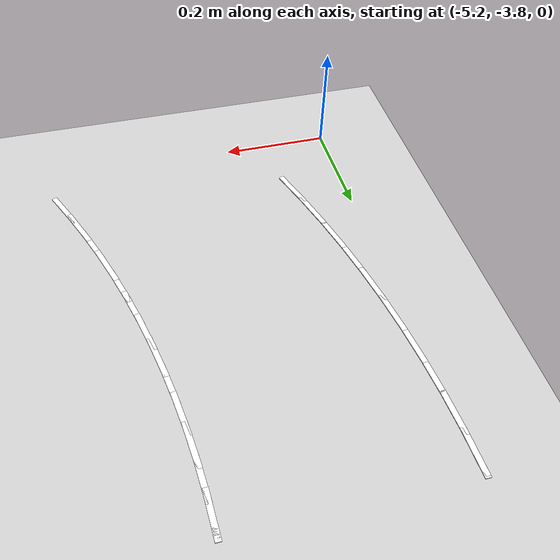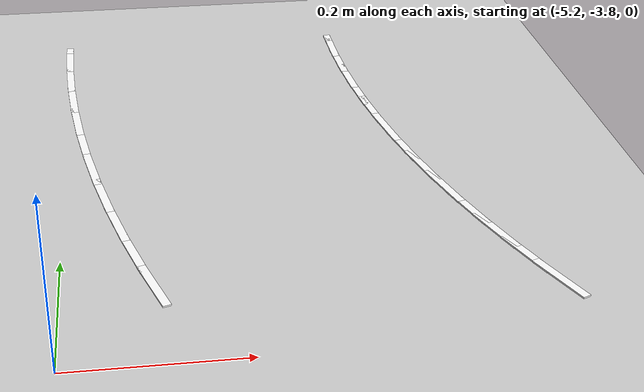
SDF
<sdf version="1.7">
 <world name="default">
  <model name="ground_plane">
   <static>1</static>
   <link name="link">
    <collision name="collision">
     <geometry><plane><normal>0 0 1</normal><size>100 100</size></plane></geometry>
     <surface>
      <contact><collide_bitmask>65535</collide_bitmask></contact>
      <friction><ode><mu>100</mu><mu2>50</mu2></ode></friction>
     </surface>
    </collision>
    <visual name="visual">
     <cast_shadows>0</cast_shadows>
     <geometry><plane><normal>0 0 1</normal><size>100 100</size></plane></geometry>
     <material>
      <script><uri>file://media/materials/scripts/gazebo.material</uri><name>Gazebo/Grey</name></script>
     </material>
    </visual>
   </link>
  </model>
  <model name="lane_line_left_349">
   <static>1</static>
   <link name="link">
    <pose>0 0 -0.004 0 -0 0</pose>
    <visual name="visual">
     <geometry><box><size>0.02 0.01 0.01</size></box></geometry>
     <material><ambient>1 1 1 1</ambient><diffuse>1 1 1 1</diffuse></material>
    </visual>
    <collision name="collision"><geometry><box><size>0.02 0.01 0.01</size></box></geometry></collision>
   </link>
   <pose>-5.2 -3 0 0 -0 1.5708</pose>
  </model>
  <model name="lane_line_right_349">
   <static>1</static>
   <link name="link">
    <pose>0 0 -0.004 0 -0 0</pose>
    <visual name="visual">
     <geometry><box><size>0.02 0.01 0.01</size></box></geometry>
     <material><ambient>1 1 1 1</ambient><diffuse>1 1 1 1</diffuse></material>
    </visual>
    <collision name="collision"><geometry><box><size>0.02 0.01 0.01</size></box></geometry></collision>
   </link>
   <pose>-4.8 -3 0 0 -0 1.5708</pose>
  </model>
  <model name="lane_line_left_350">
   <static>1</static>
   <link name="link">
    <pose>0 0 -0.004 0 -0 0</pose>
    <visual name="visual">
     <geometry><box><size>0.0841 0.01 0.01</size></box></geometry>
     <material><ambient>1 1 1 1</ambient><diffuse>1 1 1 1</diffuse></material>
    </visual>
    <collision name="collision"><geometry><box><size>0.0841 0.01 0.01</size></box></geometry></collision>
   </link>
   <pose>-4.79951 -3.02885 0 0 0 -1.55477</pose>
  </model>
  <model name="lane_line_right_350">
   <static>1</static>
   <link name="link">
    <pose>0 0 -0.004 0 -0 0</pose>
    <visual name="visual">
     <geometry><box><size>0.0841 0.01 0.01</size></box></geometry>
     <material><ambient>1 1 1 1</ambient><diffuse>1 1 1 1</diffuse></material>
    </visual>
    <collision name="collision"><geometry><box><size>0.0841 0.01 0.01</size></box></geometry></collision>
   </link>
   <pose>-5.19946 -3.03526 0 0 0 -1.55477</pose>
  </model>
  <model name="lane_line_left_351">
   <static>1</static>
   <link name="link">
    <pose>0 0 -0.004 0 -0 0</pose>
    <visual name="visual">
     <geometry><box><size>0.0841 0.01 0.01</size></box></geometry>
     <material><ambient>1 1 1 1</ambient><diffuse>1 1 1 1</diffuse></material>
    </visual>
    <collision name="collision"><geometry><box><size>0.0841 0.01 0.01</size></box></geometry></collision>
   </link>
   <pose>-4.79766 -3.08651 0 0 0 -1.52271</pose>
  </model>
  <model name="lane_line_right_351">
   <static>1</static>
   <link name="link">
    <pose>0 0 -0.004 0 -0 0</pose>
    <visual name="visual">
     <geometry><box><size>0.0841 0.01 0.01</size></box></geometry>
     <material><ambient>1 1 1 1</ambient><diffuse>1 1 1 1</diffuse></material>
    </visual>
    <collision name="collision"><geometry><box><size>0.0841 0.01 0.01</size></box></geometry></collision>
   </link>
   <pose>-5.1972 -3.10574 0 0 0 -1.52271</pose>
  </model>
  <model name="lane_line_left_352">
   <static>1</static>
   <link name="link">
    <pose>0 0 -0.004 0 -0 0</pose>
    <visual name="visual">
     <geometry><box><size>0.0841 0.01 0.01</size></box></geometry>
     <material><ambient>1 1 1 1</ambient><diffuse>1 1 1 1</diffuse></material>
    </visual>
    <collision name="collision"><geometry><box><size>0.0841 0.01 0.01</size></box></geometry></collision>
   </link>
   <pose>-4.79397 -3.14408 0 0 0 -1.49065</pose>
  </model>
  <model name="lane_line_right_352">
   <static>1</static>
   <link name="link">
    <pose>0 0 -0.004 0 -0 0</pose>
    <visual name="visual">
     <geometry><box><size>0.0841 0.01 0.01</size></box></geometry>
     <material><ambient>1 1 1 1</ambient><diffuse>1 1 1 1</diffuse></material>
    </visual>
    <collision name="collision"><geometry><box><size>0.0841 0.01 0.01</size></box></geometry></collision>
   </link>
   <pose>-5.19268 -3.1761 0 0 0 -1.49065</pose>
  </model>
  <model name="lane_line_left_353">
   <static>1</static>
   <link name="link">
    <pose>0 0 -0.004 0 -0 0</pose>
    <visual name="visual">
     <geometry><box><size>0.0841 0.01 0.01</size></box></geometry>
     <material><ambient>1 1 1 1</ambient><diffuse>1 1 1 1</diffuse></material>
    </visual>
    <collision name="collision"><geometry><box><size>0.0841 0.01 0.01</size></box></geometry></collision>
   </link>
   <pose>-4.78843 -3.20151 0 0 0 -1.4586</pose>
  </model>
  <model name="lane_line_right_353">
   <static>1</static>
   <link name="link">
    <pose>0 0 -0.004 0 -0 0</pose>
    <visual name="visual">
     <geometry><box><size>0.0841 0.01 0.01</size></box></geometry>
     <material><ambient>1 1 1 1</ambient><diffuse>1 1 1 1</diffuse></material>
    </visual>
    <collision name="collision"><geometry><box><size>0.0841 0.01 0.01</size></box></geometry></collision>
   </link>
   <pose>-5.18591 -3.24629 0 0 0 -1.4586</pose>
  </model>
  <model name="lane_line_left_354">
   <static>1</static>
   <link name="link">
    <pose>0 0 -0.004 0 -0 0</pose>
    <visual name="visual">
     <geometry><box><size>0.0841 0.01 0.01</size></box></geometry>
     <material><ambient>1 1 1 1</ambient><diffuse>1 1 1 1</diffuse></material>
    </visual>
    <collision name="collision"><geometry><box><size>0.0841 0.01 0.01</size></box></geometry></collision>
   </link>
   <pose>-4.78105 -3.25873 0 0 0 -1.42654</pose>
  </model>
  <model name="lane_line_right_354">
   <static>1</static>
   <link name="link">
    <pose>0 0 -0.004 0 -0 0</pose>
    <visual name="visual">
     <geometry><box><size>0.0841 0.01 0.01</size></box></geometry>
     <material><ambient>1 1 1 1</ambient><diffuse>1 1 1 1</diffuse></material>
    </visual>
    <collision name="collision"><geometry><box><size>0.0841 0.01 0.01</size></box></geometry></collision>
   </link>
   <pose>-5.17689 -3.31623 0 0 0 -1.42654</pose>
  </model>
  <model name="lane_line_left_355">
   <static>1</static>
   <link name="link">
    <pose>0 0 -0.004 0 -0 0</pose>
    <visual name="visual">
     <geometry><box><size>0.0841 0.01 0.01</size></box></geometry>
     <material><ambient>1 1 1 1</ambient><diffuse>1 1 1 1</diffuse></material>
    </visual>
    <collision name="collision"><geometry><box><size>0.0841 0.01 0.01</size></box></geometry></collision>
   </link>
   <pose>-4.77184 -3.31568 0 0 0 -1.39448</pose>
  </model>
  <model name="lane_line_right_355">
   <static>1</static>
   <link name="link">
    <pose>0 0 -0.004 0 -0 0</pose>
    <visual name="visual">
     <geometry><box><size>0.0841 0.01 0.01</size></box></geometry>
     <material><ambient>1 1 1 1</ambient><diffuse>1 1 1 1</diffuse></material>
    </visual>
    <collision name="collision"><geometry><box><size>0.0841 0.01 0.01</size></box></geometry></collision>
   </link>
   <pose>-5.16564 -3.38584 0 0 0 -1.39448</pose>
  </model>
  <model name="lane_line_left_356">
   <static>1</static>
   <link name="link">
    <pose>0 0 -0.004 0 -0 0</pose>
    <visual name="visual">
     <geometry><box><size>0.0841 0.01 0.01</size></box></geometry>
     <material><ambient>1 1 1 1</ambient><diffuse>1 1 1 1</diffuse></material>
    </visual>
    <collision name="collision"><geometry><box><size>0.0841 0.01 0.01</size></box></geometry></collision>
   </link>
   <pose>-4.76081 -3.37231 0 0 0 -1.36243</pose>
  </model>
  <model name="lane_line_right_356">
   <static>1</static>
   <link name="link">
    <pose>0 0 -0.004 0 -0 0</pose>
    <visual name="visual">
     <geometry><box><size>0.0841 0.01 0.01</size></box></geometry>
     <material><ambient>1 1 1 1</ambient><diffuse>1 1 1 1</diffuse></material>
    </visual>
    <collision name="collision"><geometry><box><size>0.0841 0.01 0.01</size></box></geometry></collision>
   </link>
   <pose>-5.15216 -3.45505 0 0 0 -1.36243</pose>
  </model>
  <model name="lane_line_left_357">
   <static>1</static>
   <link name="link">
    <pose>0 0 -0.004 0 -0 0</pose>
    <visual name="visual">
     <geometry><box><size>0.0841 0.01 0.01</size></box></geometry>
     <material><ambient>1 1 1 1</ambient><diffuse>1 1 1 1</diffuse></material>
    </visual>
    <collision name="collision"><geometry><box><size>0.0841 0.01 0.01</size></box></geometry></collision>
   </link>
   <pose>-4.74798 -3.42855 0 0 0 -1.33037</pose>
  </model>
  <model name="lane_line_right_357">
   <static>1</static>
   <link name="link">
    <pose>0 0 -0.004 0 -0 0</pose>
    <visual name="visual">
     <geometry><box><size>0.0841 0.01 0.01</size></box></geometry>
     <material><ambient>1 1 1 1</ambient><diffuse>1 1 1 1</diffuse></material>
    </visual>
    <collision name="collision"><geometry><box><size>0.0841 0.01 0.01</size></box></geometry></collision>
   </link>
   <pose>-5.13647 -3.5238 0 0 0 -1.33037</pose>
  </model>
  <model name="lane_line_left_358">
   <static>1</static>
   <link name="link">
    <pose>0 0 -0.004 0 -0 0</pose>
    <visual name="visual">
     <geometry><box><size>0.0841 0.01 0.01</size></box></geometry>
     <material><ambient>1 1 1 1</ambient><diffuse>1 1 1 1</diffuse></material>
    </visual>
    <collision name="collision"><geometry><box><size>0.0841 0.01 0.01</size></box></geometry></collision>
   </link>
   <pose>-4.73334 -3.48436 0 0 0 -1.29831</pose>
  </model>
  <model name="lane_line_right_358">
   <static>1</static>
   <link name="link">
    <pose>0 0 -0.004 0 -0 0</pose>
    <visual name="visual">
     <geometry><box><size>0.0841 0.01 0.01</size></box></geometry>
     <material><ambient>1 1 1 1</ambient><diffuse>1 1 1 1</diffuse></material>
    </visual>
    <collision name="collision"><geometry><box><size>0.0841 0.01 0.01</size></box></geometry></collision>
   </link>
   <pose>-5.11858 -3.59201 0 0 0 -1.29831</pose>
  </model>
  <model name="lane_line_left_359">
   <static>1</static>
   <link name="link">
    <pose>0 0 -0.004 0 -0 0</pose>
    <visual name="visual">
     <geometry><box><size>0.0841 0.01 0.01</size></box></geometry>
     <material><ambient>1 1 1 1</ambient><diffuse>1 1 1 1</diffuse></material>
    </visual>
    <collision name="collision"><geometry><box><size>0.0841 0.01 0.01</size></box></geometry></collision>
   </link>
   <pose>-4.71693 -3.53966 0 0 0 -1.26625</pose>
  </model>
  <model name="lane_line_right_359">
   <static>1</static>
   <link name="link">
    <pose>0 0 -0.004 0 -0 0</pose>
    <visual name="visual">
     <geometry><box><size>0.0841 0.01 0.01</size></box></geometry>
     <material><ambient>1 1 1 1</ambient><diffuse>1 1 1 1</diffuse></material>
    </visual>
    <collision name="collision"><geometry><box><size>0.0841 0.01 0.01</size></box></geometry></collision>
   </link>
   <pose>-5.09852 -3.65961 0 0 0 -1.26625</pose>
  </model>
  <model name="lane_line_left_360">
   <static>1</static>
   <link name="link">
    <pose>0 0 -0.004 0 -0 0</pose>
    <visual name="visual">
     <geometry><box><size>0.0841 0.01 0.01</size></box></geometry>
     <material><ambient>1 1 1 1</ambient><diffuse>1 1 1 1</diffuse></material>
    </visual>
    <collision name="collision"><geometry><box><size>0.0841 0.01 0.01</size></box></geometry></collision>
   </link>
   <pose>-4.69875 -3.59442 0 0 0 -1.2342</pose>
  </model>
  <model name="lane_line_left_361">
   <static>1</static>
   <link name="link">
    <pose>0 0 -0.004 0 -0 0</pose>
    <visual name="visual">
     <geometry><box><size>0.0841 0.01 0.01</size></box></geometry>
     <material><ambient>1 1 1 1</ambient><diffuse>1 1 1 1</diffuse></material>
    </visual>
    <collision name="collision"><geometry><box><size>0.0841 0.01 0.01</size></box></geometry></collision>
   </link>
   <pose>-4.67882 -3.64856 0 0 0 -1.20214</pose>
  </model>
  <model name="lane_line_left_362">
   <static>1</static>
   <link name="link">
    <pose>0 0 -0.004 0 -0 0</pose>
    <visual name="visual">
     <geometry><box><size>0.0841 0.01 0.01</size></box></geometry>
     <material><ambient>1 1 1 1</ambient><diffuse>1 1 1 1</diffuse></material>
    </visual>
    <collision name="collision"><geometry><box><size>0.0841 0.01 0.01</size></box></geometry></collision>
   </link>
   <pose>-4.65717 -3.70204 0 0 0 -1.17008</pose>
  </model>
 </world>
</sdf>
